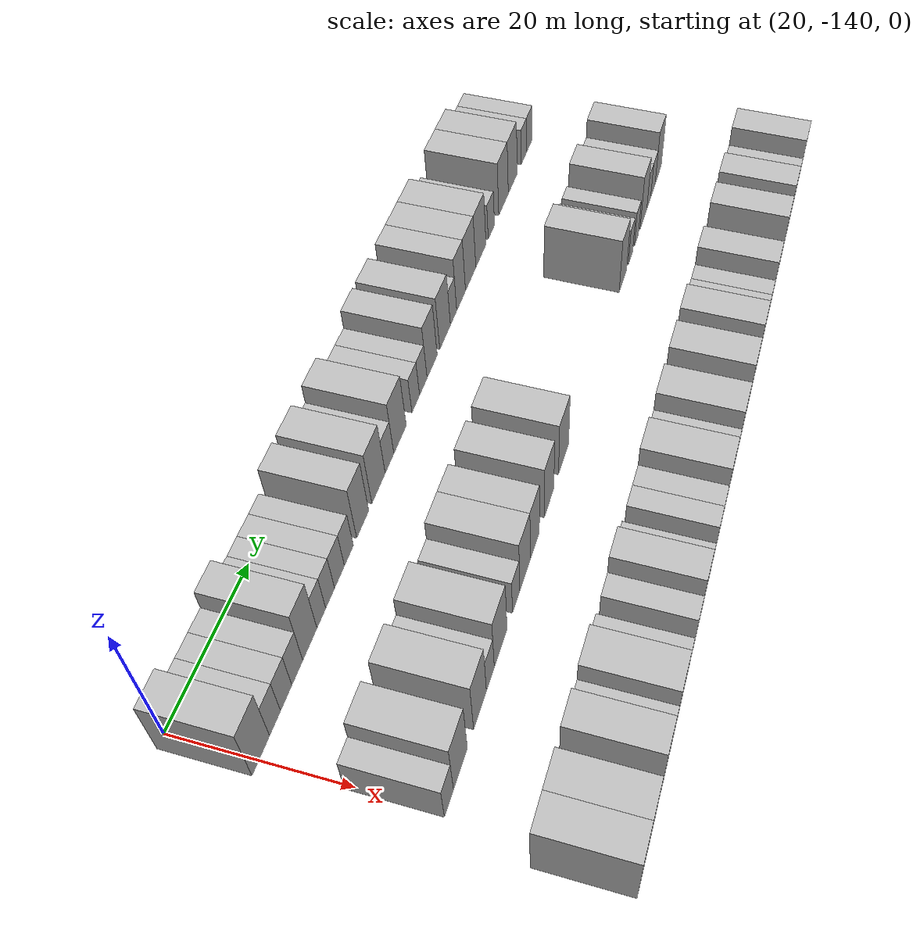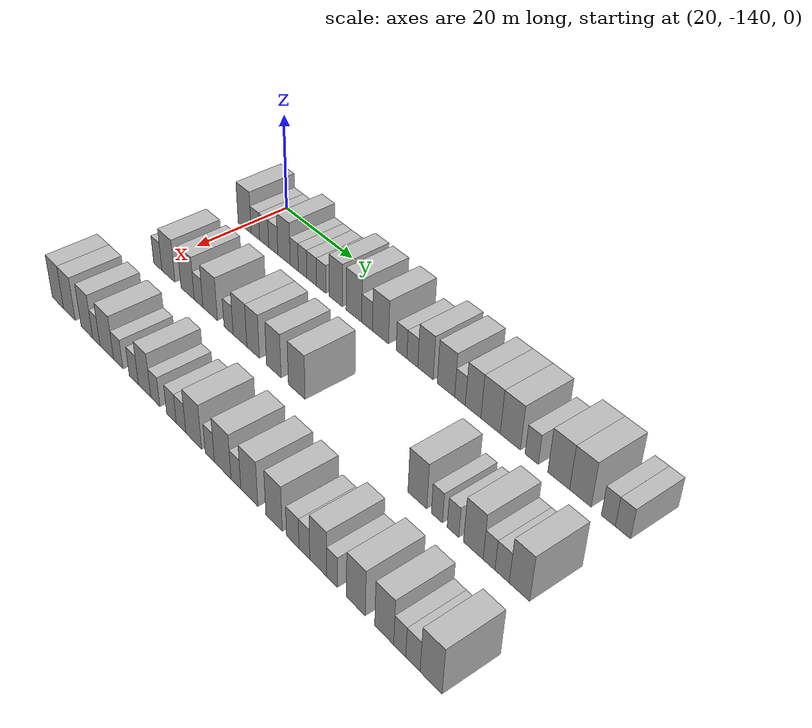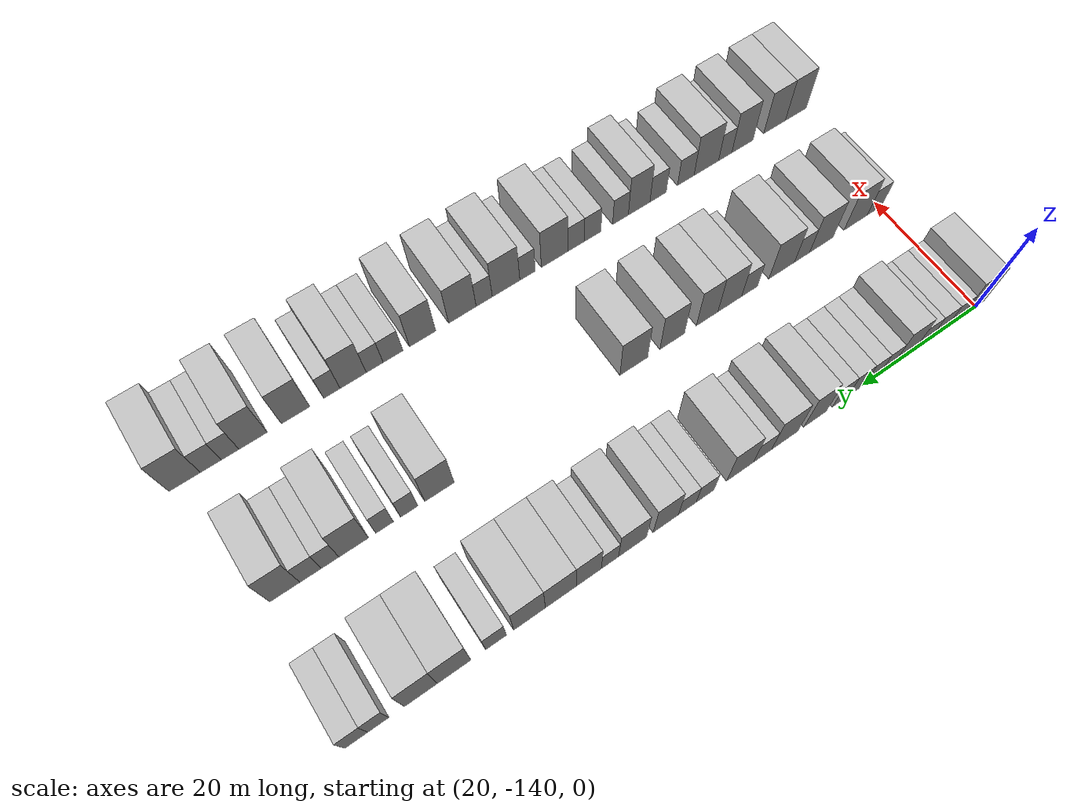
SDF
<sdf version="1.6">
 <world name="default">
  <model name="building_25">
   <static>1</static>
   <pose>25.0000 -139.5028 0 0.000000 0.000000 0.000000</pose>
   <link name="link">
    <pose>0 0 4.50 0 0 0</pose>
    <collision name="collision"><geometry><box><size>10.0000 4.1885 9.0000</size></box></geometry></collision>
    <visual name="visual">
     <cast_shadows>0</cast_shadows>
     <geometry><box><size>10.0000 4.1885 9.0000</size></box></geometry>
     <material>
      <script>
       <uri>model://HANNAS_wall/materials/scripts</uri>
       <uri>model://HANNAS_wall/materials/textures</uri>
       <name>vrc/HANNAS_wall</name>
      </script>
     </material>
    </visual>
   </link>
  </model>
  <model name="building_26">
   <static>1</static>
   <pose>25.0000 -136.0570 0 0.000000 0.000000 0.000000</pose>
   <link name="link">
    <pose>0 0 3.00 0 0 0</pose>
    <collision name="collision"><geometry><box><size>10.0000 2.7031 6.0000</size></box></geometry></collision>
    <visual name="visual">
     <cast_shadows>0</cast_shadows>
     <geometry><box><size>10.0000 2.7031 6.0000</size></box></geometry>
     <material>
      <script>
       <uri>model://HANNAS_wall/materials/scripts</uri>
       <uri>model://HANNAS_wall/materials/textures</uri>
       <name>vrc/HANNAS_wall</name>
      </script>
     </material>
    </visual>
   </link>
  </model>
  <model name="building_27">
   <static>1</static>
   <pose>25.0000 -133.2723 0 0.000000 0.000000 0.000000</pose>
   <link name="link">
    <pose>0 0 3.00 0 0 0</pose>
    <collision name="collision"><geometry><box><size>10.0000 2.8663 6.0000</size></box></geometry></collision>
    <visual name="visual">
     <cast_shadows>0</cast_shadows>
     <geometry><box><size>10.0000 2.8663 6.0000</size></box></geometry>
     <material>
      <script>
       <uri>model://HANNAS_wall/materials/scripts</uri>
       <uri>model://HANNAS_wall/materials/textures</uri>
       <name>vrc/HANNAS_wall</name>
      </script>
     </material>
    </visual>
   </link>
  </model>
  <model name="building_28">
   <static>1</static>
   <pose>25.0000 -130.4204 0 0.000000 0.000000 0.000000</pose>
   <link name="link">
    <pose>0 0 3.00 0 0 0</pose>
    <collision name="collision"><geometry><box><size>10.0000 2.8375 6.0000</size></box></geometry></collision>
    <visual name="visual">
     <cast_shadows>0</cast_shadows>
     <geometry><box><size>10.0000 2.8375 6.0000</size></box></geometry>
     <material>
      <script>
       <uri>model://HANNAS_wall/materials/scripts</uri>
       <uri>model://HANNAS_wall/materials/textures</uri>
       <name>vrc/HANNAS_wall</name>
      </script>
     </material>
    </visual>
   </link>
  </model>
  <model name="building_29">
   <static>1</static>
   <pose>25.0000 -127.1035 0 0.000000 0.000000 0.000000</pose>
   <link name="link">
    <pose>0 0 4.50 0 0 0</pose>
    <collision name="collision"><geometry><box><size>10.0000 3.7964 9.0000</size></box></geometry></collision>
    <visual name="visual">
     <cast_shadows>0</cast_shadows>
     <geometry><box><size>10.0000 3.7964 9.0000</size></box></geometry>
     <material>
      <script>
       <uri>model://HANNAS_wall/materials/scripts</uri>
       <uri>model://HANNAS_wall/materials/textures</uri>
       <name>vrc/HANNAS_wall</name>
      </script>
     </material>
    </visual>
   </link>
  </model>
  <model name="building_30">
   <static>1</static>
   <pose>25.0000 -123.9987 0 0.000000 0.000000 0.000000</pose>
   <link name="link">
    <pose>0 0 3.00 0 0 0</pose>
    <collision name="collision"><geometry><box><size>10.0000 2.4132 6.0000</size></box></geometry></collision>
    <visual name="visual">
     <cast_shadows>0</cast_shadows>
     <geometry><box><size>10.0000 2.4132 6.0000</size></box></geometry>
     <material>
      <script>
       <uri>model://HANNAS_wall/materials/scripts</uri>
       <uri>model://HANNAS_wall/materials/textures</uri>
       <name>vrc/HANNAS_wall</name>
      </script>
     </material>
    </visual>
   </link>
  </model>
  <model name="building_31">
   <static>1</static>
   <pose>25.0000 -121.5376 0 0.000000 0.000000 0.000000</pose>
   <link name="link">
    <pose>0 0 3.00 0 0 0</pose>
    <collision name="collision"><geometry><box><size>10.0000 2.5090 6.0000</size></box></geometry></collision>
    <visual name="visual">
     <cast_shadows>0</cast_shadows>
     <geometry><box><size>10.0000 2.5090 6.0000</size></box></geometry>
     <material>
      <script>
       <uri>model://HANNAS_wall/materials/scripts</uri>
       <uri>model://HANNAS_wall/materials/textures</uri>
       <name>vrc/HANNAS_wall</name>
      </script>
     </material>
    </visual>
   </link>
  </model>
  <model name="building_32">
   <static>1</static>
   <pose>25.0000 -118.8527 0 0.000000 0.000000 0.000000</pose>
   <link name="link">
    <pose>0 0 3.00 0 0 0</pose>
    <collision name="collision"><geometry><box><size>10.0000 2.8610 6.0000</size></box></geometry></collision>
    <visual name="visual">
     <cast_shadows>0</cast_shadows>
     <geometry><box><size>10.0000 2.8610 6.0000</size></box></geometry>
     <material>
      <script>
       <uri>model://HANNAS_wall/materials/scripts</uri>
       <uri>model://HANNAS_wall/materials/textures</uri>
       <name>vrc/HANNAS_wall</name>
      </script>
     </material>
    </visual>
   </link>
  </model>
  <model name="building_33">
   <static>1</static>
   <pose>25.0000 -116.0911 0 0.000000 0.000000 0.000000</pose>
   <link name="link">
    <pose>0 0 3.00 0 0 0</pose>
    <collision name="collision"><geometry><box><size>10.0000 2.6621 6.0000</size></box></geometry></collision>
    <visual name="visual">
     <cast_shadows>0</cast_shadows>
     <geometry><box><size>10.0000 2.6621 6.0000</size></box></geometry>
     <material>
      <script>
       <uri>model://HANNAS_wall/materials/scripts</uri>
       <uri>model://HANNAS_wall/materials/textures</uri>
       <name>vrc/HANNAS_wall</name>
      </script>
     </material>
    </visual>
   </link>
  </model>
  <model name="building_34">
   <static>1</static>
   <pose>25.0000 -111.9034 0 0.000000 0.000000 0.000000</pose>
   <link name="link">
    <pose>0 0 4.50 0 0 0</pose>
    <collision name="collision"><geometry><box><size>10.0000 3.7135 9.0000</size></box></geometry></collision>
    <visual name="visual">
     <cast_shadows>0</cast_shadows>
     <geometry><box><size>10.0000 3.7135 9.0000</size></box></geometry>
     <material>
      <script>
       <uri>model://HANNAS_wall/materials/scripts</uri>
       <uri>model://HANNAS_wall/materials/textures</uri>
       <name>vrc/HANNAS_wall</name>
      </script>
     </material>
    </visual>
   </link>
  </model>
  <model name="building_35">
   <static>1</static>
   <pose>25.0000 -106.9085 0 0.000000 0.000000 0.000000</pose>
   <link name="link">
    <pose>0 0 4.50 0 0 0</pose>
    <collision name="collision"><geometry><box><size>10.0000 4.2762 9.0000</size></box></geometry></collision>
    <visual name="visual">
     <cast_shadows>0</cast_shadows>
     <geometry><box><size>10.0000 4.2762 9.0000</size></box></geometry>
     <material>
      <script>
       <uri>model://HANNAS_wall/materials/scripts</uri>
       <uri>model://HANNAS_wall/materials/textures</uri>
       <name>vrc/HANNAS_wall</name>
      </script>
     </material>
    </visual>
   </link>
  </model>
  <model name="building_36">
   <static>1</static>
   <pose>25.0000 -103.3278 0 0.000000 0.000000 0.000000</pose>
   <link name="link">
    <pose>0 0 3.00 0 0 0</pose>
    <collision name="collision"><geometry><box><size>10.0000 2.8852 6.0000</size></box></geometry></collision>
    <visual name="visual">
     <cast_shadows>0</cast_shadows>
     <geometry><box><size>10.0000 2.8852 6.0000</size></box></geometry>
     <material>
      <script>
       <uri>model://HANNAS_wall/materials/scripts</uri>
       <uri>model://HANNAS_wall/materials/textures</uri>
       <name>vrc/HANNAS_wall</name>
      </script>
     </material>
    </visual>
   </link>
  </model>
  <model name="building_37">
   <static>1</static>
   <pose>25.0000 -99.7571 0 0.000000 0.000000 0.000000</pose>
   <link name="link">
    <pose>0 0 4.50 0 0 0</pose>
    <collision name="collision"><geometry><box><size>10.0000 4.2564 9.0000</size></box></geometry></collision>
    <visual name="visual">
     <cast_shadows>0</cast_shadows>
     <geometry><box><size>10.0000 4.2564 9.0000</size></box></geometry>
     <material>
      <script>
       <uri>model://HANNAS_wall/materials/scripts</uri>
       <uri>model://HANNAS_wall/materials/textures</uri>
       <name>vrc/HANNAS_wall</name>
      </script>
     </material>
    </visual>
   </link>
  </model>
  <model name="building_38">
   <static>1</static>
   <pose>25.0000 -94.2569 0 0.000000 0.000000 0.000000</pose>
   <link name="link">
    <pose>0 0 3.00 0 0 0</pose>
    <collision name="collision"><geometry><box><size>10.0000 2.7440 6.0000</size></box></geometry></collision>
    <visual name="visual">
     <cast_shadows>0</cast_shadows>
     <geometry><box><size>10.0000 2.7440 6.0000</size></box></geometry>
     <material>
      <script>
       <uri>model://HANNAS_wall/materials/scripts</uri>
       <uri>model://HANNAS_wall/materials/textures</uri>
       <name>vrc/HANNAS_wall</name>
      </script>
     </material>
    </visual>
   </link>
  </model>
  <model name="building_39">
   <static>1</static>
   <pose>25.0000 -91.5107 0 0.000000 0.000000 0.000000</pose>
   <link name="link">
    <pose>0 0 3.00 0 0 0</pose>
    <collision name="collision"><geometry><box><size>10.0000 2.7484 6.0000</size></box></geometry></collision>
    <visual name="visual">
     <cast_shadows>0</cast_shadows>
     <geometry><box><size>10.0000 2.7484 6.0000</size></box></geometry>
     <material>
      <script>
       <uri>model://HANNAS_wall/materials/scripts</uri>
       <uri>model://HANNAS_wall/materials/textures</uri>
       <name>vrc/HANNAS_wall</name>
      </script>
     </material>
    </visual>
   </link>
  </model>
  <model name="building_40">
   <static>1</static>
   <pose>25.0000 -88.2342 0 0.000000 0.000000 0.000000</pose>
   <link name="link">
    <pose>0 0 4.50 0 0 0</pose>
    <collision name="collision"><geometry><box><size>10.0000 3.8046 9.0000</size></box></geometry></collision>
    <visual name="visual">
     <cast_shadows>0</cast_shadows>
     <geometry><box><size>10.0000 3.8046 9.0000</size></box></geometry>
     <material>
      <script>
       <uri>model://HANNAS_wall/materials/scripts</uri>
       <uri>model://HANNAS_wall/materials/textures</uri>
       <name>vrc/HANNAS_wall</name>
      </script>
     </material>
    </visual>
   </link>
  </model>
  <model name="building_41">
   <static>1</static>
   <pose>25.0000 -83.2466 0 0.000000 0.000000 0.000000</pose>
   <link name="link">
    <pose>0 0 4.50 0 0 0</pose>
    <collision name="collision"><geometry><box><size>10.0000 4.1706 9.0000</size></box></geometry></collision>
    <visual name="visual">
     <cast_shadows>0</cast_shadows>
     <geometry><box><size>10.0000 4.1706 9.0000</size></box></geometry>
     <material>
      <script>
       <uri>model://HANNAS_wall/materials/scripts</uri>
       <uri>model://HANNAS_wall/materials/textures</uri>
       <name>vrc/HANNAS_wall</name>
      </script>
     </material>
    </visual>
   </link>
  </model>
  <model name="building_42">
   <static>1</static>
   <pose>25.0000 -79.9005 0 0.000000 0.000000 0.000000</pose>
   <link name="link">
    <pose>0 0 3.00 0 0 0</pose>
    <collision name="collision"><geometry><box><size>10.0000 2.5216 6.0000</size></box></geometry></collision>
    <visual name="visual">
     <cast_shadows>0</cast_shadows>
     <geometry><box><size>10.0000 2.5216 6.0000</size></box></geometry>
     <material>
      <script>
       <uri>model://HANNAS_wall/materials/scripts</uri>
       <uri>model://HANNAS_wall/materials/textures</uri>
       <name>vrc/HANNAS_wall</name>
      </script>
     </material>
    </visual>
   </link>
  </model>
  <model name="building_43">
   <static>1</static>
   <pose>25.0000 -76.8281 0 0.000000 0.000000 0.000000</pose>
   <link name="link">
    <pose>0 0 4.50 0 0 0</pose>
    <collision name="collision"><geometry><box><size>10.0000 3.6231 9.0000</size></box></geometry></collision>
    <visual name="visual">
     <cast_shadows>0</cast_shadows>
     <geometry><box><size>10.0000 3.6231 9.0000</size></box></geometry>
     <material>
      <script>
       <uri>model://HANNAS_wall/materials/scripts</uri>
       <uri>model://HANNAS_wall/materials/textures</uri>
       <name>vrc/HANNAS_wall</name>
      </script>
     </material>
    </visual>
   </link>
  </model>
  <model name="building_44">
   <static>1</static>
   <pose>25.0000 -72.8285 0 0.000000 0.000000 0.000000</pose>
   <link name="link">
    <pose>0 0 4.50 0 0 0</pose>
    <collision name="collision"><geometry><box><size>10.0000 4.3761 9.0000</size></box></geometry></collision>
    <visual name="visual">
     <cast_shadows>0</cast_shadows>
     <geometry><box><size>10.0000 4.3761 9.0000</size></box></geometry>
     <material>
      <script>
       <uri>model://HANNAS_wall/materials/scripts</uri>
       <uri>model://HANNAS_wall/materials/textures</uri>
       <name>vrc/HANNAS_wall</name>
      </script>
     </material>
    </visual>
   </link>
  </model>
  <model name="building_45">
   <static>1</static>
   <pose>25.0000 -68.4169 0 0.000000 0.000000 0.000000</pose>
   <link name="link">
    <pose>0 0 4.50 0 0 0</pose>
    <collision name="collision"><geometry><box><size>10.0000 4.4471 9.0000</size></box></geometry></collision>
    <visual name="visual">
     <cast_shadows>0</cast_shadows>
     <geometry><box><size>10.0000 4.4471 9.0000</size></box></geometry>
     <material>
      <script>
       <uri>model://HANNAS_wall/materials/scripts</uri>
       <uri>model://HANNAS_wall/materials/textures</uri>
       <name>vrc/HANNAS_wall</name>
      </script>
     </material>
    </visual>
   </link>
  </model>
  <model name="building_46">
   <static>1</static>
   <pose>25.0000 -63.7694 0 0.000000 0.000000 0.000000</pose>
   <link name="link">
    <pose>0 0 3.00 0 0 0</pose>
    <collision name="collision"><geometry><box><size>10.0000 2.8479 6.0000</size></box></geometry></collision>
    <visual name="visual">
     <cast_shadows>0</cast_shadows>
     <geometry><box><size>10.0000 2.8479 6.0000</size></box></geometry>
     <material>
      <script>
       <uri>model://HANNAS_wall/materials/scripts</uri>
       <uri>model://HANNAS_wall/materials/textures</uri>
       <name>vrc/HANNAS_wall</name>
      </script>
     </material>
    </visual>
   </link>
  </model>
  <model name="building_47">
   <static>1</static>
   <pose>25.0000 -58.0968 0 0.000000 0.000000 0.000000</pose>
   <link name="link">
    <pose>0 0 4.50 0 0 0</pose>
    <collision name="collision"><geometry><box><size>10.0000 4.4973 9.0000</size></box></geometry></collision>
    <visual name="visual">
     <cast_shadows>0</cast_shadows>
     <geometry><box><size>10.0000 4.4973 9.0000</size></box></geometry>
     <material>
      <script>
       <uri>model://HANNAS_wall/materials/scripts</uri>
       <uri>model://HANNAS_wall/materials/textures</uri>
       <name>vrc/HANNAS_wall</name>
      </script>
     </material>
    </visual>
   </link>
  </model>
  <model name="building_48">
   <static>1</static>
   <pose>25.0000 -53.6677 0 0.000000 0.000000 0.000000</pose>
   <link name="link">
    <pose>0 0 4.50 0 0 0</pose>
    <collision name="collision"><geometry><box><size>10.0000 4.3608 9.0000</size></box></geometry></collision>
    <visual name="visual">
     <cast_shadows>0</cast_shadows>
     <geometry><box><size>10.0000 4.3608 9.0000</size></box></geometry>
     <material>
      <script>
       <uri>model://HANNAS_wall/materials/scripts</uri>
       <uri>model://HANNAS_wall/materials/textures</uri>
       <name>vrc/HANNAS_wall</name>
      </script>
     </material>
    </visual>
   </link>
  </model>
  <model name="building_49">
   <static>1</static>
   <pose>25.0000 -48.1346 0 0.000000 0.000000 0.000000</pose>
   <link name="link">
    <pose>0 0 3.00 0 0 0</pose>
    <collision name="collision"><geometry><box><size>10.0000 2.7054 6.0000</size></box></geometry></collision>
    <visual name="visual">
     <cast_shadows>0</cast_shadows>
     <geometry><box><size>10.0000 2.7054 6.0000</size></box></geometry>
     <material>
      <script>
       <uri>model://HANNAS_wall/materials/scripts</uri>
       <uri>model://HANNAS_wall/materials/textures</uri>
       <name>vrc/HANNAS_wall</name>
      </script>
     </material>
    </visual>
   </link>
  </model>
  <model name="building_50">
   <static>1</static>
   <pose>25.0000 -45.3167 0 0.000000 0.000000 0.000000</pose>
   <link name="link">
    <pose>0 0 3.00 0 0 0</pose>
    <collision name="collision"><geometry><box><size>10.0000 2.9302 6.0000</size></box></geometry></collision>
    <visual name="visual">
     <cast_shadows>0</cast_shadows>
     <geometry><box><size>10.0000 2.9302 6.0000</size></box></geometry>
     <material>
      <script>
       <uri>model://HANNAS_wall/materials/scripts</uri>
       <uri>model://HANNAS_wall/materials/textures</uri>
       <name>vrc/HANNAS_wall</name>
      </script>
     </material>
    </visual>
   </link>
  </model>
  <model name="building_143">
   <static>1</static>
   <pose>44.0000 -139.0162 0 0.000000 0.000000 0.000000</pose>
   <link name="link">
    <pose>0 0 3.00 0 0 0</pose>
    <collision name="collision"><geometry><box><size>10.0000 2.7213 6.0000</size></box></geometry></collision>
    <visual name="visual">
     <cast_shadows>0</cast_shadows>
     <geometry><box><size>10.0000 2.7213 6.0000</size></box></geometry>
     <material>
      <script>
       <uri>model://HANNAS_wall/materials/scripts</uri>
       <uri>model://HANNAS_wall/materials/textures</uri>
       <name>vrc/HANNAS_wall</name>
      </script>
     </material>
    </visual>
   </link>
  </model>
  <model name="building_144">
   <static>1</static>
   <pose>44.0000 -135.5123 0 0.000000 0.000000 0.000000</pose>
   <link name="link">
    <pose>0 0 4.50 0 0 0</pose>
    <collision name="collision"><geometry><box><size>10.0000 4.2864 9.0000</size></box></geometry></collision>
    <visual name="visual">
     <cast_shadows>0</cast_shadows>
     <geometry><box><size>10.0000 4.2864 9.0000</size></box></geometry>
     <material>
      <script>
       <uri>model://HANNAS_wall/materials/scripts</uri>
       <uri>model://HANNAS_wall/materials/textures</uri>
       <name>vrc/HANNAS_wall</name>
      </script>
     </material>
    </visual>
   </link>
  </model>
  <model name="building_145">
   <static>1</static>
   <pose>44.0000 -129.2592 0 0.000000 0.000000 0.000000</pose>
   <link name="link">
    <pose>0 0 4.50 0 0 0</pose>
    <collision name="collision"><geometry><box><size>10.0000 4.2198 9.0000</size></box></geometry></collision>
    <visual name="visual">
     <cast_shadows>0</cast_shadows>
     <geometry><box><size>10.0000 4.2198 9.0000</size></box></geometry>
     <material>
      <script>
       <uri>model://HANNAS_wall/materials/scripts</uri>
       <uri>model://HANNAS_wall/materials/textures</uri>
       <name>vrc/HANNAS_wall</name>
      </script>
     </material>
    </visual>
   </link>
  </model>
  <model name="building_146">
   <static>1</static>
   <pose>44.0000 -125.7992 0 0.000000 0.000000 0.000000</pose>
   <link name="link">
    <pose>0 0 3.00 0 0 0</pose>
    <collision name="collision"><geometry><box><size>10.0000 2.7002 6.0000</size></box></geometry></collision>
    <visual name="visual">
     <cast_shadows>0</cast_shadows>
     <geometry><box><size>10.0000 2.7002 6.0000</size></box></geometry>
     <material>
      <script>
       <uri>model://HANNAS_wall/materials/scripts</uri>
       <uri>model://HANNAS_wall/materials/textures</uri>
       <name>vrc/HANNAS_wall</name>
      </script>
     </material>
    </visual>
   </link>
  </model>
  <model name="building_147">
   <static>1</static>
   <pose>44.0000 -122.2067 0 0.000000 0.000000 0.000000</pose>
   <link name="link">
    <pose>0 0 4.50 0 0 0</pose>
    <collision name="collision"><geometry><box><size>10.0000 4.4847 9.0000</size></box></geometry></collision>
    <visual name="visual">
     <cast_shadows>0</cast_shadows>
     <geometry><box><size>10.0000 4.4847 9.0000</size></box></geometry>
     <material>
      <script>
       <uri>model://HANNAS_wall/materials/scripts</uri>
       <uri>model://HANNAS_wall/materials/textures</uri>
       <name>vrc/HANNAS_wall</name>
      </script>
     </material>
    </visual>
   </link>
  </model>
  <model name="building_148">
   <static>1</static>
   <pose>44.0000 -116.6008 0 0.000000 0.000000 0.000000</pose>
   <link name="link">
    <pose>0 0 3.00 0 0 0</pose>
    <collision name="collision"><geometry><box><size>10.0000 2.7271 6.0000</size></box></geometry></collision>
    <visual name="visual">
     <cast_shadows>0</cast_shadows>
     <geometry><box><size>10.0000 2.7271 6.0000</size></box></geometry>
     <material>
      <script>
       <uri>model://HANNAS_wall/materials/scripts</uri>
       <uri>model://HANNAS_wall/materials/textures</uri>
       <name>vrc/HANNAS_wall</name>
      </script>
     </material>
    </visual>
   </link>
  </model>
  <model name="building_149">
   <static>1</static>
   <pose>44.0000 -113.2214 0 0.000000 0.000000 0.000000</pose>
   <link name="link">
    <pose>0 0 4.50 0 0 0</pose>
    <collision name="collision"><geometry><box><size>10.0000 4.0317 9.0000</size></box></geometry></collision>
    <visual name="visual">
     <cast_shadows>0</cast_shadows>
     <geometry><box><size>10.0000 4.0317 9.0000</size></box></geometry>
     <material>
      <script>
       <uri>model://HANNAS_wall/materials/scripts</uri>
       <uri>model://HANNAS_wall/materials/textures</uri>
       <name>vrc/HANNAS_wall</name>
      </script>
     </material>
    </visual>
   </link>
  </model>
  <model name="building_150">
   <static>1</static>
   <pose>44.0000 -109.4038 0 0.000000 0.000000 0.000000</pose>
   <link name="link">
    <pose>0 0 4.50 0 0 0</pose>
    <collision name="collision"><geometry><box><size>10.0000 3.6035 9.0000</size></box></geometry></collision>
    <visual name="visual">
     <cast_shadows>0</cast_shadows>
     <geometry><box><size>10.0000 3.6035 9.0000</size></box></geometry>
     <material>
      <script>
       <uri>model://HANNAS_wall/materials/scripts</uri>
       <uri>model://HANNAS_wall/materials/textures</uri>
       <name>vrc/HANNAS_wall</name>
      </script>
     </material>
    </visual>
   </link>
  </model>
  <model name="building_151">
   <static>1</static>
   <pose>44.0000 -103.5868 0 0.000000 0.000000 0.000000</pose>
   <link name="link">
    <pose>0 0 4.50 0 0 0</pose>
    <collision name="collision"><geometry><box><size>10.0000 4.0306 9.0000</size></box></geometry></collision>
    <visual name="visual">
     <cast_shadows>0</cast_shadows>
     <geometry><box><size>10.0000 4.0306 9.0000</size></box></geometry>
     <material>
      <script>
       <uri>model://HANNAS_wall/materials/scripts</uri>
       <uri>model://HANNAS_wall/materials/textures</uri>
       <name>vrc/HANNAS_wall</name>
      </script>
     </material>
    </visual>
   </link>
  </model>
  <model name="building_152">
   <static>1</static>
   <pose>44.0000 -97.3454 0 0.000000 0.000000 0.000000</pose>
   <link name="link">
    <pose>0 0 4.50 0 0 0</pose>
    <collision name="collision"><geometry><box><size>10.0000 4.4521 9.0000</size></box></geometry></collision>
    <visual name="visual">
     <cast_shadows>0</cast_shadows>
     <geometry><box><size>10.0000 4.4521 9.0000</size></box></geometry>
     <material>
      <script>
       <uri>model://HANNAS_wall/materials/scripts</uri>
       <uri>model://HANNAS_wall/materials/textures</uri>
       <name>vrc/HANNAS_wall</name>
      </script>
     </material>
    </visual>
   </link>
  </model>
  <model name="building_153">
   <static>1</static>
   <pose>44.0000 -67.7896 0 0.000000 0.000000 0.000000</pose>
   <link name="link">
    <pose>0 0 4.50 0 0 0</pose>
    <collision name="collision"><geometry><box><size>10.0000 4.2199 9.0000</size></box></geometry></collision>
    <visual name="visual">
     <cast_shadows>0</cast_shadows>
     <geometry><box><size>10.0000 4.2199 9.0000</size></box></geometry>
     <material>
      <script>
       <uri>model://HANNAS_wall/materials/scripts</uri>
       <uri>model://HANNAS_wall/materials/textures</uri>
       <name>vrc/HANNAS_wall</name>
      </script>
     </material>
    </visual>
   </link>
  </model>
  <model name="building_154">
   <static>1</static>
   <pose>44.0000 -63.4613 0 0.000000 0.000000 0.000000</pose>
   <link name="link">
    <pose>0 0 3.00 0 0 0</pose>
    <collision name="collision"><geometry><box><size>10.0000 2.4366 6.0000</size></box></geometry></collision>
    <visual name="visual">
     <cast_shadows>0</cast_shadows>
     <geometry><box><size>10.0000 2.4366 6.0000</size></box></geometry>
     <material>
      <script>
       <uri>model://HANNAS_wall/materials/scripts</uri>
       <uri>model://HANNAS_wall/materials/textures</uri>
       <name>vrc/HANNAS_wall</name>
      </script>
     </material>
    </visual>
   </link>
  </model>
  <model name="building_155">
   <static>1</static>
   <pose>44.0000 -60.0086 0 0.000000 0.000000 0.000000</pose>
   <link name="link">
    <pose>0 0 3.00 0 0 0</pose>
    <collision name="collision"><geometry><box><size>10.0000 2.4688 6.0000</size></box></geometry></collision>
    <visual name="visual">
     <cast_shadows>0</cast_shadows>
     <geometry><box><size>10.0000 2.4688 6.0000</size></box></geometry>
     <material>
      <script>
       <uri>model://HANNAS_wall/materials/scripts</uri>
       <uri>model://HANNAS_wall/materials/textures</uri>
       <name>vrc/HANNAS_wall</name>
      </script>
     </material>
    </visual>
   </link>
  </model>
  <model name="building_156">
   <static>1</static>
   <pose>44.0000 -55.7415 0 0.000000 0.000000 0.000000</pose>
   <link name="link">
    <pose>0 0 4.50 0 0 0</pose>
    <collision name="collision"><geometry><box><size>10.0000 4.0653 9.0000</size></box></geometry></collision>
    <visual name="visual">
     <cast_shadows>0</cast_shadows>
     <geometry><box><size>10.0000 4.0653 9.0000</size></box></geometry>
     <material>
      <script>
       <uri>model://HANNAS_wall/materials/scripts</uri>
       <uri>model://HANNAS_wall/materials/textures</uri>
       <name>vrc/HANNAS_wall</name>
      </script>
     </material>
    </visual>
   </link>
  </model>
  <model name="building_157">
   <static>1</static>
   <pose>44.0000 -52.5065 0 0.000000 0.000000 0.000000</pose>
   <link name="link">
    <pose>0 0 3.00 0 0 0</pose>
    <collision name="collision"><geometry><box><size>10.0000 2.4047 6.0000</size></box></geometry></collision>
    <visual name="visual">
     <cast_shadows>0</cast_shadows>
     <geometry><box><size>10.0000 2.4047 6.0000</size></box></geometry>
     <material>
      <script>
       <uri>model://HANNAS_wall/materials/scripts</uri>
       <uri>model://HANNAS_wall/materials/textures</uri>
       <name>vrc/HANNAS_wall</name>
      </script>
     </material>
    </visual>
   </link>
  </model>
  <model name="building_158">
   <static>1</static>
   <pose>44.0000 -49.8809 0 0.000000 0.000000 0.000000</pose>
   <link name="link">
    <pose>0 0 3.00 0 0 0</pose>
    <collision name="collision"><geometry><box><size>10.0000 2.8467 6.0000</size></box></geometry></collision>
    <visual name="visual">
     <cast_shadows>0</cast_shadows>
     <geometry><box><size>10.0000 2.8467 6.0000</size></box></geometry>
     <material>
      <script>
       <uri>model://HANNAS_wall/materials/scripts</uri>
       <uri>model://HANNAS_wall/materials/textures</uri>
       <name>vrc/HANNAS_wall</name>
      </script>
     </material>
    </visual>
   </link>
  </model>
  <model name="building_159">
   <static>1</static>
   <pose>44.0000 -46.4565 0 0.000000 0.000000 0.000000</pose>
   <link name="link">
    <pose>0 0 4.50 0 0 0</pose>
    <collision name="collision"><geometry><box><size>10.0000 4.0021 9.0000</size></box></geometry></collision>
    <visual name="visual">
     <cast_shadows>0</cast_shadows>
     <geometry><box><size>10.0000 4.0021 9.0000</size></box></geometry>
     <material>
      <script>
       <uri>model://HANNAS_wall/materials/scripts</uri>
       <uri>model://HANNAS_wall/materials/textures</uri>
       <name>vrc/HANNAS_wall</name>
      </script>
     </material>
    </visual>
   </link>
  </model>
  <model name="building_244">
   <static>1</static>
   <pose>63.0000 -140.6760 0 0.000000 0.000000 0.000000</pose>
   <link name="link">
    <pose>0 0 4.50 0 0 0</pose>
    <collision name="collision"><geometry><box><size>10.0000 3.9778 9.0000</size></box></geometry></collision>
    <visual name="visual">
     <cast_shadows>0</cast_shadows>
     <geometry><box><size>10.0000 3.9778 9.0000</size></box></geometry>
     <material>
      <script>
       <uri>model://HANNAS_wall/materials/scripts</uri>
       <uri>model://HANNAS_wall/materials/textures</uri>
       <name>vrc/HANNAS_wall</name>
      </script>
     </material>
    </visual>
   </link>
  </model>
  <model name="building_245">
   <static>1</static>
   <pose>63.0000 -136.6420 0 0.000000 0.000000 0.000000</pose>
   <link name="link">
    <pose>0 0 4.50 0 0 0</pose>
    <collision name="collision"><geometry><box><size>10.0000 4.0904 9.0000</size></box></geometry></collision>
    <visual name="visual">
     <cast_shadows>0</cast_shadows>
     <geometry><box><size>10.0000 4.0904 9.0000</size></box></geometry>
     <material>
      <script>
       <uri>model://HANNAS_wall/materials/scripts</uri>
       <uri>model://HANNAS_wall/materials/textures</uri>
       <name>vrc/HANNAS_wall</name>
      </script>
     </material>
    </visual>
   </link>
  </model>
  <model name="building_246">
   <static>1</static>
   <pose>63.0000 -130.6461 0 0.000000 0.000000 0.000000</pose>
   <link name="link">
    <pose>0 0 4.50 0 0 0</pose>
    <collision name="collision"><geometry><box><size>10.0000 3.9014 9.0000</size></box></geometry></collision>
    <visual name="visual">
     <cast_shadows>0</cast_shadows>
     <geometry><box><size>10.0000 3.9014 9.0000</size></box></geometry>
     <material>
      <script>
       <uri>model://HANNAS_wall/materials/scripts</uri>
       <uri>model://HANNAS_wall/materials/textures</uri>
       <name>vrc/HANNAS_wall</name>
      </script>
     </material>
    </visual>
   </link>
  </model>
  <model name="building_247">
   <static>1</static>
   <pose>63.0000 -127.4869 0 0.000000 0.000000 0.000000</pose>
   <link name="link">
    <pose>0 0 3.00 0 0 0</pose>
    <collision name="collision"><geometry><box><size>10.0000 2.4169 6.0000</size></box></geometry></collision>
    <visual name="visual">
     <cast_shadows>0</cast_shadows>
     <geometry><box><size>10.0000 2.4169 6.0000</size></box></geometry>
     <material>
      <script>
       <uri>model://HANNAS_wall/materials/scripts</uri>
       <uri>model://HANNAS_wall/materials/textures</uri>
       <name>vrc/HANNAS_wall</name>
      </script>
     </material>
    </visual>
   </link>
  </model>
  <model name="building_248">
   <static>1</static>
   <pose>63.0000 -124.0559 0 0.000000 0.000000 0.000000</pose>
   <link name="link">
    <pose>0 0 4.50 0 0 0</pose>
    <collision name="collision"><geometry><box><size>10.0000 4.4452 9.0000</size></box></geometry></collision>
    <visual name="visual">
     <cast_shadows>0</cast_shadows>
     <geometry><box><size>10.0000 4.4452 9.0000</size></box></geometry>
     <material>
      <script>
       <uri>model://HANNAS_wall/materials/scripts</uri>
       <uri>model://HANNAS_wall/materials/textures</uri>
       <name>vrc/HANNAS_wall</name>
      </script>
     </material>
    </visual>
   </link>
  </model>
  <model name="building_249">
   <static>1</static>
   <pose>63.0000 -120.3676 0 0.000000 0.000000 0.000000</pose>
   <link name="link">
    <pose>0 0 3.00 0 0 0</pose>
    <collision name="collision"><geometry><box><size>10.0000 2.9314 6.0000</size></box></geometry></collision>
    <visual name="visual">
     <cast_shadows>0</cast_shadows>
     <geometry><box><size>10.0000 2.9314 6.0000</size></box></geometry>
     <material>
      <script>
       <uri>model://HANNAS_wall/materials/scripts</uri>
       <uri>model://HANNAS_wall/materials/textures</uri>
       <name>vrc/HANNAS_wall</name>
      </script>
     </material>
    </visual>
   </link>
  </model>
  <model name="building_250">
   <static>1</static>
   <pose>63.0000 -115.4717 0 0.000000 0.000000 0.000000</pose>
   <link name="link">
    <pose>0 0 3.00 0 0 0</pose>
    <collision name="collision"><geometry><box><size>10.0000 2.8604 6.0000</size></box></geometry></collision>
    <visual name="visual">
     <cast_shadows>0</cast_shadows>
     <geometry><box><size>10.0000 2.8604 6.0000</size></box></geometry>
     <material>
      <script>
       <uri>model://HANNAS_wall/materials/scripts</uri>
       <uri>model://HANNAS_wall/materials/textures</uri>
       <name>vrc/HANNAS_wall</name>
      </script>
     </material>
    </visual>
   </link>
  </model>
  <model name="building_251">
   <static>1</static>
   <pose>63.0000 -112.1652 0 0.000000 0.000000 0.000000</pose>
   <link name="link">
    <pose>0 0 4.50 0 0 0</pose>
    <collision name="collision"><geometry><box><size>10.0000 3.7526 9.0000</size></box></geometry></collision>
    <visual name="visual">
     <cast_shadows>0</cast_shadows>
     <geometry><box><size>10.0000 3.7526 9.0000</size></box></geometry>
     <material>
      <script>
       <uri>model://HANNAS_wall/materials/scripts</uri>
       <uri>model://HANNAS_wall/materials/textures</uri>
       <name>vrc/HANNAS_wall</name>
      </script>
     </material>
    </visual>
   </link>
  </model>
  <model name="building_252">
   <static>1</static>
   <pose>63.0000 -108.9478 0 0.000000 0.000000 0.000000</pose>
   <link name="link">
    <pose>0 0 3.00 0 0 0</pose>
    <collision name="collision"><geometry><box><size>10.0000 2.6822 6.0000</size></box></geometry></collision>
    <visual name="visual">
     <cast_shadows>0</cast_shadows>
     <geometry><box><size>10.0000 2.6822 6.0000</size></box></geometry>
     <material>
      <script>
       <uri>model://HANNAS_wall/materials/scripts</uri>
       <uri>model://HANNAS_wall/materials/textures</uri>
       <name>vrc/HANNAS_wall</name>
      </script>
     </material>
    </visual>
   </link>
  </model>
  <model name="building_253">
   <static>1</static>
   <pose>63.0000 -104.2089 0 0.000000 0.000000 0.000000</pose>
   <link name="link">
    <pose>0 0 3.00 0 0 0</pose>
    <collision name="collision"><geometry><box><size>10.0000 2.7957 6.0000</size></box></geometry></collision>
    <visual name="visual">
     <cast_shadows>0</cast_shadows>
     <geometry><box><size>10.0000 2.7957 6.0000</size></box></geometry>
     <material>
      <script>
       <uri>model://HANNAS_wall/materials/scripts</uri>
       <uri>model://HANNAS_wall/materials/textures</uri>
       <name>vrc/HANNAS_wall</name>
      </script>
     </material>
    </visual>
   </link>
  </model>
  <model name="building_254">
   <static>1</static>
   <pose>63.0000 -101.4446 0 0.000000 0.000000 0.000000</pose>
   <link name="link">
    <pose>0 0 3.00 0 0 0</pose>
    <collision name="collision"><geometry><box><size>10.0000 2.7329 6.0000</size></box></geometry></collision>
    <visual name="visual">
     <cast_shadows>0</cast_shadows>
     <geometry><box><size>10.0000 2.7329 6.0000</size></box></geometry>
     <material>
      <script>
       <uri>model://HANNAS_wall/materials/scripts</uri>
       <uri>model://HANNAS_wall/materials/textures</uri>
       <name>vrc/HANNAS_wall</name>
      </script>
     </material>
    </visual>
   </link>
  </model>
  <model name="building_255">
   <static>1</static>
   <pose>63.0000 -97.8754 0 0.000000 0.000000 0.000000</pose>
   <link name="link">
    <pose>0 0 4.50 0 0 0</pose>
    <collision name="collision"><geometry><box><size>10.0000 4.4054 9.0000</size></box></geometry></collision>
    <visual name="visual">
     <cast_shadows>0</cast_shadows>
     <geometry><box><size>10.0000 4.4054 9.0000</size></box></geometry>
     <material>
      <script>
       <uri>model://HANNAS_wall/materials/scripts</uri>
       <uri>model://HANNAS_wall/materials/textures</uri>
       <name>vrc/HANNAS_wall</name>
      </script>
     </material>
    </visual>
   </link>
  </model>
  <model name="building_256">
   <static>1</static>
   <pose>63.0000 -93.4266 0 0.000000 0.000000 0.000000</pose>
   <link name="link">
    <pose>0 0 3.00 0 0 0</pose>
    <collision name="collision"><geometry><box><size>10.0000 2.4922 6.0000</size></box></geometry></collision>
    <visual name="visual">
     <cast_shadows>0</cast_shadows>
     <geometry><box><size>10.0000 2.4922 6.0000</size></box></geometry>
     <material>
      <script>
       <uri>model://HANNAS_wall/materials/scripts</uri>
       <uri>model://HANNAS_wall/materials/textures</uri>
       <name>vrc/HANNAS_wall</name>
      </script>
     </material>
    </visual>
   </link>
  </model>
  <model name="building_257">
   <static>1</static>
   <pose>63.0000 -89.9670 0 0.000000 0.000000 0.000000</pose>
   <link name="link">
    <pose>0 0 4.50 0 0 0</pose>
    <collision name="collision"><geometry><box><size>10.0000 4.4270 9.0000</size></box></geometry></collision>
    <visual name="visual">
     <cast_shadows>0</cast_shadows>
     <geometry><box><size>10.0000 4.4270 9.0000</size></box></geometry>
     <material>
      <script>
       <uri>model://HANNAS_wall/materials/scripts</uri>
       <uri>model://HANNAS_wall/materials/textures</uri>
       <name>vrc/HANNAS_wall</name>
      </script>
     </material>
    </visual>
   </link>
  </model>
  <model name="building_258">
   <static>1</static>
   <pose>63.0000 -86.4761 0 0.000000 0.000000 0.000000</pose>
   <link name="link">
    <pose>0 0 3.00 0 0 0</pose>
    <collision name="collision"><geometry><box><size>10.0000 2.5549 6.0000</size></box></geometry></collision>
    <visual name="visual">
     <cast_shadows>0</cast_shadows>
     <geometry><box><size>10.0000 2.5549 6.0000</size></box></geometry>
     <material>
      <script>
       <uri>model://HANNAS_wall/materials/scripts</uri>
       <uri>model://HANNAS_wall/materials/textures</uri>
       <name>vrc/HANNAS_wall</name>
      </script>
     </material>
    </visual>
   </link>
  </model>
  <model name="building_259">
   <static>1</static>
   <pose>63.0000 -83.0342 0 0.000000 0.000000 0.000000</pose>
   <link name="link">
    <pose>0 0 4.50 0 0 0</pose>
    <collision name="collision"><geometry><box><size>10.0000 4.3288 9.0000</size></box></geometry></collision>
    <visual name="visual">
     <cast_shadows>0</cast_shadows>
     <geometry><box><size>10.0000 4.3288 9.0000</size></box></geometry>
     <material>
      <script>
       <uri>model://HANNAS_wall/materials/scripts</uri>
       <uri>model://HANNAS_wall/materials/textures</uri>
       <name>vrc/HANNAS_wall</name>
      </script>
     </material>
    </visual>
   </link>
  </model>
  <model name="building_260">
   <static>1</static>
   <pose>63.0000 -76.8588 0 0.000000 0.000000 0.000000</pose>
   <link name="link">
    <pose>0 0 4.50 0 0 0</pose>
    <collision name="collision"><geometry><box><size>10.0000 4.0221 9.0000</size></box></geometry></collision>
    <visual name="visual">
     <cast_shadows>0</cast_shadows>
     <geometry><box><size>10.0000 4.0221 9.0000</size></box></geometry>
     <material>
      <script>
       <uri>model://HANNAS_wall/materials/scripts</uri>
       <uri>model://HANNAS_wall/materials/textures</uri>
       <name>vrc/HANNAS_wall</name>
      </script>
     </material>
    </visual>
   </link>
  </model>
  <model name="building_261">
   <static>1</static>
   <pose>63.0000 -72.3569 0 0.000000 0.000000 0.000000</pose>
   <link name="link">
    <pose>0 0 3.00 0 0 0</pose>
    <collision name="collision"><geometry><box><size>10.0000 2.9817 6.0000</size></box></geometry></collision>
    <visual name="visual">
     <cast_shadows>0</cast_shadows>
     <geometry><box><size>10.0000 2.9817 6.0000</size></box></geometry>
     <material>
      <script>
       <uri>model://HANNAS_wall/materials/scripts</uri>
       <uri>model://HANNAS_wall/materials/textures</uri>
       <name>vrc/HANNAS_wall</name>
      </script>
     </material>
    </visual>
   </link>
  </model>
  <model name="building_262">
   <static>1</static>
   <pose>63.0000 -69.6075 0 0.000000 0.000000 0.000000</pose>
   <link name="link">
    <pose>0 0 3.00 0 0 0</pose>
    <collision name="collision"><geometry><box><size>10.0000 2.5170 6.0000</size></box></geometry></collision>
    <visual name="visual">
     <cast_shadows>0</cast_shadows>
     <geometry><box><size>10.0000 2.5170 6.0000</size></box></geometry>
     <material>
      <script>
       <uri>model://HANNAS_wall/materials/scripts</uri>
       <uri>model://HANNAS_wall/materials/textures</uri>
       <name>vrc/HANNAS_wall</name>
      </script>
     </material>
    </visual>
   </link>
  </model>
  <model name="building_263">
   <static>1</static>
   <pose>63.0000 -66.4158 0 0.000000 0.000000 0.000000</pose>
   <link name="link">
    <pose>0 0 4.50 0 0 0</pose>
    <collision name="collision"><geometry><box><size>10.0000 3.8666 9.0000</size></box></geometry></collision>
    <visual name="visual">
     <cast_shadows>0</cast_shadows>
     <geometry><box><size>10.0000 3.8666 9.0000</size></box></geometry>
     <material>
      <script>
       <uri>model://HANNAS_wall/materials/scripts</uri>
       <uri>model://HANNAS_wall/materials/textures</uri>
       <name>vrc/HANNAS_wall</name>
      </script>
     </material>
    </visual>
   </link>
  </model>
  <model name="building_264">
   <static>1</static>
   <pose>63.0000 -63.2822 0 0.000000 0.000000 0.000000</pose>
   <link name="link">
    <pose>0 0 3.00 0 0 0</pose>
    <collision name="collision"><geometry><box><size>10.0000 2.4006 6.0000</size></box></geometry></collision>
    <visual name="visual">
     <cast_shadows>0</cast_shadows>
     <geometry><box><size>10.0000 2.4006 6.0000</size></box></geometry>
     <material>
      <script>
       <uri>model://HANNAS_wall/materials/scripts</uri>
       <uri>model://HANNAS_wall/materials/textures</uri>
       <name>vrc/HANNAS_wall</name>
      </script>
     </material>
    </visual>
   </link>
  </model>
  <model name="building_265">
   <static>1</static>
   <pose>63.0000 -58.0469 0 0.000000 0.000000 0.000000</pose>
   <link name="link">
    <pose>0 0 4.50 0 0 0</pose>
    <collision name="collision"><geometry><box><size>10.0000 4.0699 9.0000</size></box></geometry></collision>
    <visual name="visual">
     <cast_shadows>0</cast_shadows>
     <geometry><box><size>10.0000 4.0699 9.0000</size></box></geometry>
     <material>
      <script>
       <uri>model://HANNAS_wall/materials/scripts</uri>
       <uri>model://HANNAS_wall/materials/textures</uri>
       <name>vrc/HANNAS_wall</name>
      </script>
     </material>
    </visual>
   </link>
  </model>
  <model name="building_266">
   <static>1</static>
   <pose>63.0000 -52.0350 0 0.000000 0.000000 0.000000</pose>
   <link name="link">
    <pose>0 0 4.50 0 0 0</pose>
    <collision name="collision"><geometry><box><size>10.0000 3.9540 9.0000</size></box></geometry></collision>
    <visual name="visual">
     <cast_shadows>0</cast_shadows>
     <geometry><box><size>10.0000 3.9540 9.0000</size></box></geometry>
     <material>
      <script>
       <uri>model://HANNAS_wall/materials/scripts</uri>
       <uri>model://HANNAS_wall/materials/textures</uri>
       <name>vrc/HANNAS_wall</name>
      </script>
     </material>
    </visual>
   </link>
  </model>
  <model name="building_267">
   <static>1</static>
   <pose>63.0000 -48.8444 0 0.000000 0.000000 0.000000</pose>
   <link name="link">
    <pose>0 0 3.00 0 0 0</pose>
    <collision name="collision"><geometry><box><size>10.0000 2.4272 6.0000</size></box></geometry></collision>
    <visual name="visual">
     <cast_shadows>0</cast_shadows>
     <geometry><box><size>10.0000 2.4272 6.0000</size></box></geometry>
     <material>
      <script>
       <uri>model://HANNAS_wall/materials/scripts</uri>
       <uri>model://HANNAS_wall/materials/textures</uri>
       <name>vrc/HANNAS_wall</name>
      </script>
     </material>
    </visual>
   </link>
  </model>
  <model name="building_268">
   <static>1</static>
   <pose>63.0000 -46.1957 0 0.000000 0.000000 0.000000</pose>
   <link name="link">
    <pose>0 0 3.00 0 0 0</pose>
    <collision name="collision"><geometry><box><size>10.0000 2.8701 6.0000</size></box></geometry></collision>
    <visual name="visual">
     <cast_shadows>0</cast_shadows>
     <geometry><box><size>10.0000 2.8701 6.0000</size></box></geometry>
     <material>
      <script>
       <uri>model://HANNAS_wall/materials/scripts</uri>
       <uri>model://HANNAS_wall/materials/textures</uri>
       <name>vrc/HANNAS_wall</name>
      </script>
     </material>
    </visual>
   </link>
  </model>
  <model name="building_269">
   <static>1</static>
   <pose>63.0000 -42.6332 0 0.000000 0.000000 0.000000</pose>
   <link name="link">
    <pose>0 0 4.50 0 0 0</pose>
    <collision name="collision"><geometry><box><size>10.0000 4.2549 9.0000</size></box></geometry></collision>
    <visual name="visual">
     <cast_shadows>0</cast_shadows>
     <geometry><box><size>10.0000 4.2549 9.0000</size></box></geometry>
     <material>
      <script>
       <uri>model://HANNAS_wall/materials/scripts</uri>
       <uri>model://HANNAS_wall/materials/textures</uri>
       <name>vrc/HANNAS_wall</name>
      </script>
     </material>
    </visual>
   </link>
  </model>
 </world>
</sdf>
